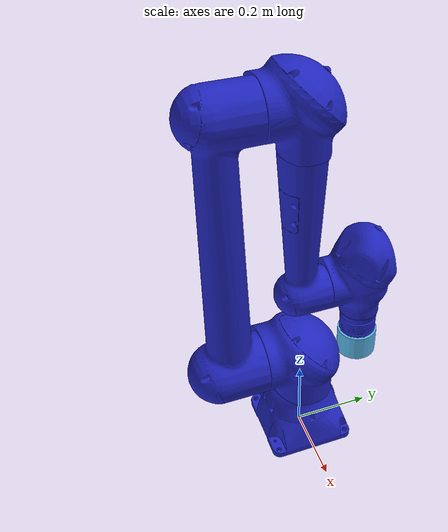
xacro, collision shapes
<?xml version="1.0" ?>
<robot name="motoman_hc10dt" xmlns:xacro="http://ros.org/wiki/xacro">
  <xacro:include filename="$(find motoman_hc10_support)/urdf/hc10dt_macro.xacro"/>
  <xacro:include filename="$(find motoman_hc10_gazebo)/urdf/hc10_macro.xacro"/>
  <xacro:motoman_hc10dt prefix=""/>
  <xacro:motoman_hc10_g prefix=""/>

  <!-- fix to gazebo world -->
  <link name="world"/>
  <joint name="world-base_link" type="fixed">
    <parent link="world"/>
    <child link="base_link"/>
  </joint>

  <!-- ros_control plugin -->
  <gazebo>
    <plugin name="gazebo_ros_control" filename="libgazebo_ros_control.so">
      <robotSimType>gazebo_ros_control/DefaultRobotHWSim</robotSimType>
    </plugin>
  </gazebo>
</robot>

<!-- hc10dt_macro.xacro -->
<robot xmlns:xacro="http://ros.org/wiki/xacro">
  <xacro:macro name="motoman_hc10dt" params="prefix">

  <!-- Adhiti Additions -->

  <xacro:arg name="gpu" default="false"/>
  <xacro:property name="gpu" value="$(arg gpu)" />

  <!-- end -->

    <!-- Properties -->
    <material name="yaskawa_blue">
      <color rgba="0.12941 0.14902 0.74902 1" />
    </material>
    <material name="yaskawa_white">
      <color rgba="0.95294 0.95294 0.95294 1" />
    </material>

    <!-- link list -->
    <link name="${prefix}base_link">
      <visual>
        <geometry>
          <mesh filename="package://motoman_hc10_support/meshes/hc10/visual/base_link.dae"/>
        </geometry>
        <material name="yaskawa_blue"/>
      </visual>
      <collision>
        <geometry>
          <mesh filename="package://motoman_hc10_support/meshes/hc10/collision/base_link.stl"/>
        </geometry>
      </collision>
      <inertial>
        <mass value="0.1" />
        <inertia ixx="0.03" iyy="0.03" izz="0.03" ixy="0.0" ixz="0.0" iyz="0.0" />
      </inertial>
    </link>
    <link name="${prefix}link_1_s">
      <visual>
        <geometry>
          <mesh filename="package://motoman_hc10_support/meshes/hc10/visual/link_1_s.dae"/>
        </geometry>
        <material name="yaskawa_blue"/>
      </visual>
      <collision>
        <geometry>
          <mesh filename="package://motoman_hc10_support/meshes/hc10/collision/link_1_s.stl"/>
        </geometry>
      </collision>
      <inertial>
        <mass value="0.1" />
        <inertia ixx="0.03" iyy="0.03" izz="0.03" ixy="0.0" ixz="0.0" iyz="0.0" />
      </inertial>
    </link>
    <link name="${prefix}link_2_l">
      <visual>
        <geometry>
          <mesh filename="package://motoman_hc10_support/meshes/hc10/visual/link_2_l.dae"/>
        </geometry>
        <material name="yaskawa_blue"/>
      </visual>
      <collision>
        <geometry>
          <mesh filename="package://motoman_hc10_support/meshes/hc10/collision/link_2_l.stl"/>
        </geometry>
      </collision>
      <inertial>
        <mass value="0.1" />
        <inertia ixx="0.03" iyy="0.03" izz="0.03" ixy="0.0" ixz="0.0" iyz="0.0" />
      </inertial>
    </link>
    <link name="${prefix}link_3_u">
      <visual>
        <geometry>
          <mesh filename="package://motoman_hc10_support/meshes/hc10/visual/link_3_u.dae"/>
        </geometry>
        <material name="yaskawa_blue"/>
      </visual>
      <collision>
        <geometry>
          <mesh filename="package://motoman_hc10_support/meshes/hc10/collision/link_3_u.stl"/>
        </geometry>
      </collision>
      <inertial>
        <mass value="0.1" />
        <inertia ixx="0.03" iyy="0.03" izz="0.03" ixy="0.0" ixz="0.0" iyz="0.0" />
      </inertial>
    </link>
    <link name="${prefix}link_4_r">
      <visual>
        <geometry>
          <mesh filename="package://motoman_hc10_support/meshes/hc10/visual/link_4_r.dae"/>
        </geometry>
        <material name="yaskawa_blue"/>
      </visual>
      <collision>
        <geometry>
          <mesh filename="package://motoman_hc10_support/meshes/hc10/collision/link_4_r.stl"/>
        </geometry>
      </collision>
      <inertial>
        <mass value="0.1" />
        <inertia ixx="0.03" iyy="0.03" izz="0.03" ixy="0.0" ixz="0.0" iyz="0.0" />
      </inertial>
    </link>
    <link name="${prefix}link_5_b">
      <visual>
        <geometry>
          <mesh filename="package://motoman_hc10_support/meshes/hc10/visual/link_5_b.dae"/>
        </geometry>
        <material name="yaskawa_blue"/>
      </visual>
      <collision>
        <geometry>
          <mesh filename="package://motoman_hc10_support/meshes/hc10/collision/link_5_b.stl"/>
        </geometry>
      </collision>
      <inertial>
        <mass value="0.1" />
        <inertia ixx="0.03" iyy="0.03" izz="0.03" ixy="0.0" ixz="0.0" iyz="0.0" />
      </inertial>
    </link>
    <link name="${prefix}link_6_t">
      <visual>
        <geometry>
          <mesh filename="package://motoman_hc10_support/meshes/hc10dt/visual/link_6_t.dae"/>
        </geometry>
        <material name="yaskawa_blue"/>
      </visual>
      <collision>
        <geometry>
          <mesh filename="package://motoman_hc10_support/meshes/hc10dt/collision/link_6_t.stl"/>
       </geometry>
      </collision>
      <inertial>
        <mass value="0.1" />
        <inertia ixx="0.03" iyy="0.03" izz="0.03" ixy="0.0" ixz="0.0" iyz="0.0" />
      </inertial>
    </link>
    <link name="${prefix}tool0"/>
    <!-- end of link list -->

  <!-- end -->

    <!-- joint list -->
    <joint name="${prefix}joint_1_s" type="revolute">
      <parent link="${prefix}base_link"/>
      <child link="${prefix}link_1_s"/>
      <origin xyz="0 0 0.275" rpy="0 0 0" />
      <axis xyz="0 0 1" />
      <limit lower="${radians(-180)}" upper="${radians(180)}" effort="368.48" velocity="${radians(130)}"/>
    </joint>
    <joint name="${prefix}joint_2_l" type="revolute">
      <parent link="${prefix}link_1_s"/>
      <child link="${prefix}link_2_l"/>
      <origin xyz="0 0 0" rpy="0 0 0" />
      <axis xyz="0 1 0" />
      <limit lower="${radians(-180)}" upper="${radians(180)}" effort="368.48" velocity="${radians(130)}"/>
    </joint>
    <joint name="${prefix}joint_3_u" type="revolute">
      <parent link="${prefix}link_2_l"/>
      <child link="${prefix}link_3_u"/>
      <origin xyz="0 0 0.700" rpy="0 0 0" />
      <axis xyz="0 -1 0" />
      <limit lower="${radians(-5)}" upper="${radians(355)}" effort="141.12" velocity="${radians(180)}"/>
    </joint>
    <joint name="${prefix}joint_4_r" type="revolute">
      <parent link="${prefix}link_3_u"/>
      <child link="${prefix}link_4_r"/>
      <origin xyz="0 0 -0.500" rpy="0 0 0" />
      <axis xyz="0 0 1" />
      <limit lower="${radians(-180)}" upper="${radians(180)}" effort="39.20" velocity="${radians(180)}"/>
    </joint>
    <joint name="${prefix}joint_5_b" type="revolute">
      <parent link="${prefix}link_4_r"/>
      <child link="${prefix}link_5_b"/>
      <origin xyz="0 0.162 0" rpy="0 0 0" />
      <axis xyz="0 -1 0" />
      <limit lower="${radians(-180)}" upper="${radians(180)}" effort="31.36" velocity="${radians(250)}"/>
    </joint>
    <joint name="${prefix}joint_6_t" type="revolute">
      <parent link="${prefix}link_5_b"/>
      <child link="${prefix}link_6_t"/>
      <origin xyz="0 0 0" rpy="0 0 0" />
      <axis xyz="0 0 1" />
      <limit lower="${radians(-180)}" upper="${radians(180)}" effort="31.36" velocity="${radians(250)}"/>
    </joint>
    <joint name="${prefix}joint_6_t-tool0" type="fixed">
      <origin xyz="0 0 -0.170" rpy="${pi} 0 0"/>
      <parent link="${prefix}link_6_t"/>
      <child link="${prefix}tool0"/>
    </joint>
    <!-- end of joint list -->

    <!-- ROS base_link to Robot Manufacturer World Coordinates transform -->
    <link name="${prefix}base" />
    <joint name="${prefix}base_link-base" type="fixed">
      <origin xyz="0 0 0.275" rpy="0 0 0"/>
      <parent link="${prefix}base_link"/>
      <child link="${prefix}base"/>
    </joint>

  <!-- Adding the lidar marcos -->

    <xacro:include filename="$(find velodyne_description)/urdf/VLP-16.urdf.xacro"/>

    <VLP-16 parent="${prefix}tool0" name="velodyne" topic="/velodyne_points" hz="10" samples="440" gpu="${gpu}">
      <origin xyz="0 0 0" rpy="0 0 0" />
    </VLP-16>

  <!-- end -->
  </xacro:macro>
</robot>

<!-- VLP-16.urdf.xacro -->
<robot xmlns:xacro="http://www.ros.org/wiki/xacro" name="VLP-16">
  <xacro:property name="M_PI" value="3.1415926535897931" />
  <xacro:macro name="VLP-16" params="*origin is_sim:=true parent:=base_link name:=velodyne tf_prefix:='' topic:=/velodyne_points organize_cloud:=false hz:=10 lasers:=16 samples:=1875 collision_range:=0.3 min_range:=0.0 max_range:=100.0 noise:=0.008 min_angle:=-${M_PI} max_angle:=${M_PI} gpu:=false">

    <joint name="${name}_base_mount_joint" type="fixed">
      <xacro:insert_block name="origin" />
      <parent link="${parent}"/>
      <child link="${name}_base_link"/>
    </joint>

    <link name="${name}_base_link">
      <inertial>
        <mass value="0.83"/>
        <origin xyz="0 0 0.03585"/>
        <inertia ixx="${(0.83 * (3.0*0.0516*0.0516 + 0.0717*0.0717)) / 12.0}" ixy="0" ixz="0"
          iyy="${(0.83 * (3.0*0.0516*0.0516 + 0.0717*0.0717)) / 12.0}" iyz="0"
          izz="${0.5 * 0.83 * (0.0516*0.0516)}"/>
      </inertial>
      <visual>
        <geometry>
          <mesh filename="package://velodyne_description/meshes/VLP16_base_1.dae" />
        </geometry>
      </visual>
      <visual>
        <geometry>
          <mesh filename="package://velodyne_description/meshes/VLP16_base_2.dae" />
        </geometry>
      </visual>
      <collision>
        <origin rpy="0 0 0" xyz="0 0 0.03585"/>
        <geometry>
          <cylinder radius="0.0516" length="0.0717"/>
        </geometry>
      </collision>
    </link>

    <joint name="${name}_base_scan_joint" type="fixed" >
      <origin xyz="0 0 0.0377" rpy="0 0 0" />
      <parent link="${name}_base_link" />
      <child link="${name}"/>
    </joint>

    <link name="${name}">
      <inertial>
        <mass value="0.01"/>
        <origin xyz="0 0 0"/>
        <inertia ixx="1e-7" ixy="0" ixz="0" iyy="1e-7" iyz="0" izz="1e-7"/>
      </inertial>
      <visual>
        <origin xyz="0 0 -0.0377" />
        <geometry>
          <mesh filename="package://velodyne_description/meshes/VLP16_scan.dae" />
        </geometry>
      </visual>
      <collision>
        <geometry>
          <sphere radius="0"/>
        </geometry>
      </collision>
    </link>

    <!-- Gazebo requires the velodyne_gazebo_plugins package -->
    <xacro:if value="${is_sim}">
        <gazebo reference="${name}">
            <xacro:if value="${gpu}">
                <sensor type="gpu_ray" name="${name}-VLP16">
                <pose>0 0 0 0 0 0</pose>
                <visualize>false</visualize>
                <update_rate>${hz}</update_rate>
                <ray>
                    <scan>
                    <horizontal>
                        <samples>${samples}</samples>
                        <resolution>1</resolution>
                        <min_angle>${min_angle}</min_angle>
                        <max_angle>${max_angle}</max_angle>
                    </horizontal>
                    <vertical>
                        <samples>${lasers}</samples>
                        <resolution>1</resolution>
                        <min_angle>-${15.0*M_PI/180.0}</min_angle>
                        <max_angle> ${15.0*M_PI/180.0}</max_angle>
                    </vertical>
                    </scan>
                    <range>
                    <min>${collision_range}</min>
                    <max>${max_range+1}</max>
                    <resolution>0.001</resolution>
                    </range>
                    <noise>
                    <type>gaussian</type>
                    <mean>0.0</mean>
                    <stddev>0.0</stddev>
                    </noise>
                </ray>
                <plugin name="gazebo_ros_laser_controller" filename="libgazebo_ros_velodyne_laser.so">
                    <ros>
                    <namespace>/${name}</namespace>
                    <remapping>~/out:=${topic}</remapping>
                    </ros>
                    <tf_prefix>${tf_prefix}</tf_prefix>
                    <frame_name>${name}</frame_name>
                    <organize_cloud>${organize_cloud}</organize_cloud>
                    <min_range>${min_range}</min_range>
                    <max_range>${max_range}</max_range>
                    <gaussian_noise>${noise}</gaussian_noise>
                </plugin>
                </sensor>
            </xacro:if>
            <xacro:unless value="${gpu}">
                <sensor type="ray" name="${name}-VLP16">
                <pose>0 0 0 0 0 0</pose>
                <visualize>false</visualize>
                <update_rate>${hz}</update_rate>
                <ray>
                    <scan>
                    <horizontal>
                        <samples>${samples}</samples>
                        <resolution>1</resolution>
                        <min_angle>${min_angle}</min_angle>
                        <max_angle>${max_angle}</max_angle>
                    </horizontal>
                    <vertical>
                        <samples>${lasers}</samples>
                        <resolution>1</resolution>
                        <min_angle>-${15.0*M_PI/180.0}</min_angle>
                        <max_angle> ${15.0*M_PI/180.0}</max_angle>
                    </vertical>
                    </scan>
                    <range>
                    <min>${collision_range}</min>
                    <max>${max_range+1}</max>
                    <resolution>0.001</resolution>
                    </range>
                    <noise>
                    <type>gaussian</type>
                    <mean>0.0</mean>
                    <stddev>0.0</stddev>
                    </noise>
                </ray>
                <plugin name="gazebo_ros_laser_controller" filename="libgazebo_ros_velodyne_laser.so">
                    <ros>
                    <namespace>/${name}</namespace>
                    <remapping>~/out:=${topic}</remapping>
                    </ros>
                    <tf_prefix>${tf_prefix}</tf_prefix>
                    <frame_name>${name}</frame_name>
                    <organize_cloud>${organize_cloud}</organize_cloud>
                    <min_range>${min_range}</min_range>
                    <max_range>${max_range}</max_range>
                    <gaussian_noise>${noise}</gaussian_noise>
                </plugin>
                </sensor>
            </xacro:unless>
        </gazebo>
    </xacro:if>

  </xacro:macro>
</robot>
